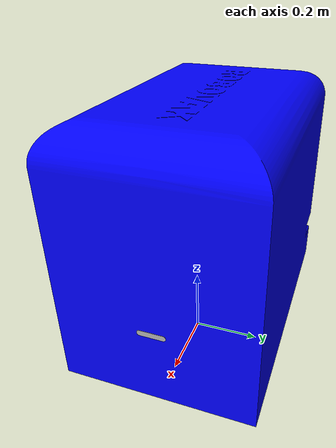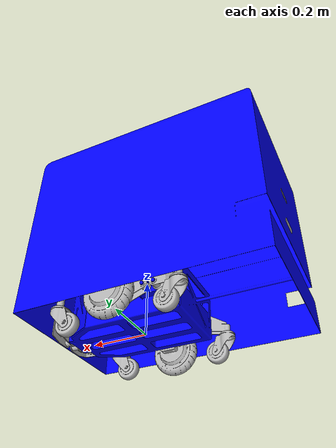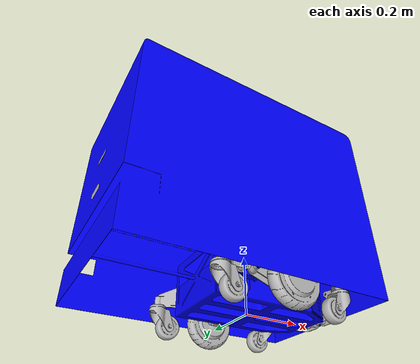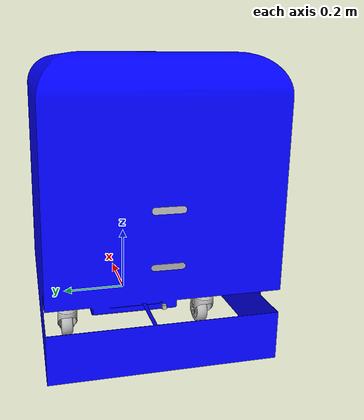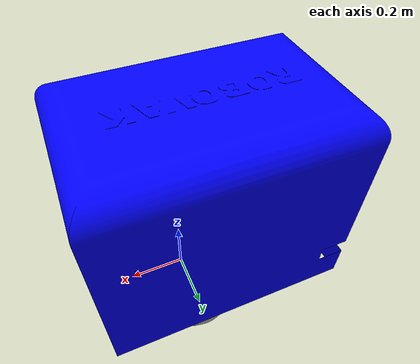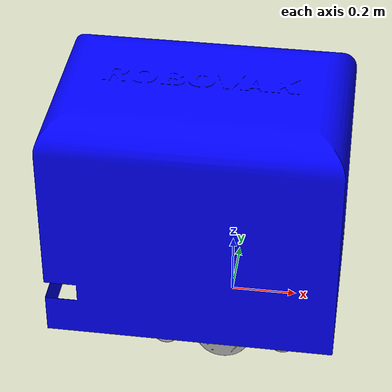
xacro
<?xml version="1.0" ?>
<robot name="robot_cleaner_fix" xmlns:xacro="http://www.ros.org/wiki/xacro">

<xacro:include filename="$(find robot_cleaner_fix_description)/urdf/materials.xacro" />
<xacro:include filename="$(find robot_cleaner_fix_description)/urdf/robot_cleaner_fix.trans" />
<xacro:include filename="$(find robot_cleaner_fix_description)/urdf/robot_cleaner_fix.gazebo" />

<link name="base_footprint" />

<joint name="base_footprint_joint" type="fixed">
  <parent link="base_footprint" />
  <child link="base_link" />
</joint>

<link name="base_link">
  <inertial>
    <origin xyz="-0.011180184961346859 1.857556735149512e-05 0.17795010903467734" rpy="0 0 0"/>
    <mass value="8.69547472352218"/>
    <inertia ixx="0.652363" iyy="0.874564" izz="0.579309" ixy="9.1e-05" iyz="-0.000223" ixz="0.096221"/>
  </inertial>
  <visual>
    <origin xyz="0 0 0" rpy="0 0 0"/>
    <geometry>
      <mesh filename="package://robot_cleaner_fix_description/meshes/base_link.stl" scale="0.001 0.001 0.001"/>
    </geometry>
    <material name="blue"/>
  </visual>
  <collision>
    <origin xyz="0 0 0" rpy="0 0 0"/>
    <geometry>
      <mesh filename="package://robot_cleaner_fix_description/meshes/base_link.stl" scale="0.001 0.001 0.001"/>
    </geometry>
  </collision>
</link>

<link name="left_wheel_1">
  <inertial>
    <origin xyz="-5.569637119094001e-07 -0.03991872409872016 -9.199933262774018e-08" rpy="0 0 0"/>
    <mass value="1.1900191614829423"/>
    <inertia ixx="0.002126" iyy="0.003545" izz="0.002126" ixy="0.0" iyz="0.0" ixz="-0.0"/>
  </inertial>
  <visual>
    <origin xyz="-0.000447 0.20125 -0.031" rpy="0 0 0"/>
    <geometry>
      <mesh filename="package://robot_cleaner_fix_description/meshes/left_wheel_1.stl" scale="0.001 0.001 0.001"/>
    </geometry>
    <material name="silver"/>
  </visual>
  <collision>
    <origin xyz="-0.000447 0.20125 -0.031" rpy="0 0 0"/>
    <geometry>
      <mesh filename="package://robot_cleaner_fix_description/meshes/left_wheel_1.stl" scale="0.001 0.001 0.001"/>
    </geometry>
  </collision>
</link>

<link name="right_wheel_1">
  <inertial>
    <origin xyz="-5.569637182833704e-07 0.039918724098714914 9.19993327769264e-08" rpy="0 0 0"/>
    <mass value="1.1900191614829407"/>
    <inertia ixx="0.002126" iyy="0.003545" izz="0.002126" ixy="-0.0" iyz="0.0" ixz="0.0"/>
  </inertial>
  <visual>
    <origin xyz="-0.000447 -0.20525 -0.031" rpy="0 0 0"/>
    <geometry>
      <mesh filename="package://robot_cleaner_fix_description/meshes/right_wheel_1.stl" scale="0.001 0.001 0.001"/>
    </geometry>
    <material name="silver"/>
  </visual>
  <collision>
    <origin xyz="-0.000447 -0.20525 -0.031" rpy="0 0 0"/>
    <geometry>
      <mesh filename="package://robot_cleaner_fix_description/meshes/right_wheel_1.stl" scale="0.001 0.001 0.001"/>
    </geometry>
  </collision>
</link>

<link name="left_wheel_arm_1">
  <inertial>
    <origin xyz="0.07673142205387917 0.0010630489693319312 -0.014076073167351738" rpy="0 0 0"/>
    <mass value="0.1270684130523778"/>
    <inertia ixx="7.4e-05" iyy="0.000206" izz="0.000155" ixy="-0.0" iyz="0.0" ixz="1.6e-05"/>
  </inertial>
  <visual>
    <origin xyz="0.089553 0.18525 -0.069" rpy="0 0 0"/>
    <geometry>
      <mesh filename="package://robot_cleaner_fix_description/meshes/left_wheel_arm_1.stl" scale="0.001 0.001 0.001"/>
    </geometry>
    <material name="silver"/>
  </visual>
  <collision>
    <origin xyz="0.089553 0.18525 -0.069" rpy="0 0 0"/>
    <geometry>
      <mesh filename="package://robot_cleaner_fix_description/meshes/left_wheel_arm_1.stl" scale="0.001 0.001 0.001"/>
    </geometry>
  </collision>
</link>

<link name="right_wheel_arm_1">
  <inertial>
    <origin xyz="0.07673142165828555 -0.0009094500375780301 -0.01407596822043071" rpy="0 0 0"/>
    <mass value="0.12706840580817644"/>
    <inertia ixx="7.4e-05" iyy="0.000206" izz="0.000156" ixy="-0.0" iyz="0.0" ixz="1.6e-05"/>
  </inertial>
  <visual>
    <origin xyz="0.089553 -0.18525 -0.069" rpy="0 0 0"/>
    <geometry>
      <mesh filename="package://robot_cleaner_fix_description/meshes/right_wheel_arm_1.stl" scale="0.001 0.001 0.001"/>
    </geometry>
    <material name="silver"/>
  </visual>
  <collision>
    <origin xyz="0.089553 -0.18525 -0.069" rpy="0 0 0"/>
    <geometry>
      <mesh filename="package://robot_cleaner_fix_description/meshes/right_wheel_arm_1.stl" scale="0.001 0.001 0.001"/>
    </geometry>
  </collision>
</link>

<link name="right_front_casterarm_1">
  <inertial>
    <origin xyz="-0.04101463724684637 0.006381100707153614 0.010896408525965129" rpy="0 0 0"/>
    <mass value="0.057739704393848006"/>
    <inertia ixx="3e-05" iyy="8.4e-05" izz="7.9e-05" ixy="1.7e-05" iyz="3e-06" ixz="-7e-06"/>
  </inertial>
  <visual>
    <origin xyz="0.129553 -0.18525 -0.069" rpy="0 0 0"/>
    <geometry>
      <mesh filename="package://robot_cleaner_fix_description/meshes/right_front_casterarm_1.stl" scale="0.001 0.001 0.001"/>
    </geometry>
    <material name="silver"/>
  </visual>
  <collision>
    <origin xyz="0.129553 -0.18525 -0.069" rpy="0 0 0"/>
    <geometry>
      <mesh filename="package://robot_cleaner_fix_description/meshes/right_front_casterarm_1.stl" scale="0.001 0.001 0.001"/>
    </geometry>
  </collision>
</link>

<link name="left_front_casterarm_1">
  <inertial>
    <origin xyz="-0.041014637049509056 -0.006381100481246321 0.010896408436181268" rpy="0 0 0"/>
    <mass value="0.05773970442715474"/>
    <inertia ixx="3e-05" iyy="8.4e-05" izz="7.9e-05" ixy="-1.7e-05" iyz="-3e-06" ixz="-7e-06"/>
  </inertial>
  <visual>
    <origin xyz="0.129553 0.18525 -0.069" rpy="0 0 0"/>
    <geometry>
      <mesh filename="package://robot_cleaner_fix_description/meshes/left_front_casterarm_1.stl" scale="0.001 0.001 0.001"/>
    </geometry>
    <material name="silver"/>
  </visual>
  <collision>
    <origin xyz="0.129553 0.18525 -0.069" rpy="0 0 0"/>
    <geometry>
      <mesh filename="package://robot_cleaner_fix_description/meshes/left_front_casterarm_1.stl" scale="0.001 0.001 0.001"/>
    </geometry>
  </collision>
</link>

<link name="left_front_casterwheel_1">
  <inertial>
    <origin xyz="5.352023419724627e-07 -3.8393818688198245e-07 -8.459150663449322e-08" rpy="0 0 0"/>
    <mass value="0.15265041550606903"/>
    <inertia ixx="7e-05" iyy="0.000115" izz="7e-05" ixy="-1e-06" iyz="-0.0" ixz="0.0"/>
  </inertial>
  <visual>
    <origin xyz="0.179558 0.208681 0.014" rpy="0 0 0"/>
    <geometry>
      <mesh filename="package://robot_cleaner_fix_description/meshes/left_front_casterwheel_1.stl" scale="0.001 0.001 0.001"/>
    </geometry>
    <material name="silver"/>
  </visual>
  <collision>
    <origin xyz="0.179558 0.208681 0.014" rpy="0 0 0"/>
    <geometry>
      <mesh filename="package://robot_cleaner_fix_description/meshes/left_front_casterwheel_1.stl" scale="0.001 0.001 0.001"/>
    </geometry>
  </collision>
</link>

<link name="left_rear_casterwheel_1">
  <inertial>
    <origin xyz="3.490402556149963e-07 3.8623196862985765e-08 -9.749668981526294e-08" rpy="0 0 0"/>
    <mass value="0.1526490802875982"/>
    <inertia ixx="7e-05" iyy="0.000115" izz="7e-05" ixy="-2e-06" iyz="0.0" ixz="0.0"/>
  </inertial>
  <visual>
    <origin xyz="-0.179741 0.203795 0.014" rpy="0 0 0"/>
    <geometry>
      <mesh filename="package://robot_cleaner_fix_description/meshes/left_rear_casterwheel_1.stl" scale="0.001 0.001 0.001"/>
    </geometry>
    <material name="silver"/>
  </visual>
  <collision>
    <origin xyz="-0.179741 0.203795 0.014" rpy="0 0 0"/>
    <geometry>
      <mesh filename="package://robot_cleaner_fix_description/meshes/left_rear_casterwheel_1.stl" scale="0.001 0.001 0.001"/>
    </geometry>
  </collision>
</link>

<link name="right_front_casterwheel_1">
  <inertial>
    <origin xyz="4.969060834192351e-07 6.528189916421567e-08 -5.6359183096474363e-08" rpy="0 0 0"/>
    <mass value="0.15265022527998973"/>
    <inertia ixx="7e-05" iyy="0.000115" izz="7e-05" ixy="0.0" iyz="-0.0" ixz="-0.0"/>
  </inertial>
  <visual>
    <origin xyz="0.179554 -0.209177 0.014" rpy="0 0 0"/>
    <geometry>
      <mesh filename="package://robot_cleaner_fix_description/meshes/right_front_casterwheel_1.stl" scale="0.001 0.001 0.001"/>
    </geometry>
    <material name="silver"/>
  </visual>
  <collision>
    <origin xyz="0.179554 -0.209177 0.014" rpy="0 0 0"/>
    <geometry>
      <mesh filename="package://robot_cleaner_fix_description/meshes/right_front_casterwheel_1.stl" scale="0.001 0.001 0.001"/>
    </geometry>
  </collision>
</link>

<link name="right_rear_casterwheel_1">
  <inertial>
    <origin xyz="-4.6445461893140916e-08 -3.883458572218057e-07 -9.96888406060159e-08" rpy="0 0 0"/>
    <mass value="0.15265062431983312"/>
    <inertia ixx="7e-05" iyy="0.000115" izz="7e-05" ixy="-1e-06" iyz="0.0" ixz="0.0"/>
  </inertial>
  <visual>
    <origin xyz="-0.179702 -0.197445 0.014" rpy="0 0 0"/>
    <geometry>
      <mesh filename="package://robot_cleaner_fix_description/meshes/right_rear_casterwheel_1.stl" scale="0.001 0.001 0.001"/>
    </geometry>
    <material name="silver"/>
  </visual>
  <collision>
    <origin xyz="-0.179702 -0.197445 0.014" rpy="0 0 0"/>
    <geometry>
      <mesh filename="package://robot_cleaner_fix_description/meshes/right_rear_casterwheel_1.stl" scale="0.001 0.001 0.001"/>
    </geometry>
  </collision>
</link>

<link name="right_rear_casterholder_1">
  <inertial>
    <origin xyz="-0.010793558705910228 -6.309798074083384e-05 -0.025862095557405564" rpy="0 0 0"/>
    <mass value="0.05532656181322749"/>
    <inertia ixx="4.8e-05" iyy="5.6e-05" izz="4e-05" ixy="0.0" iyz="-0.0" ixz="-1.9e-05"/>
  </inertial>
  <visual>
    <origin xyz="-0.219697 -0.1981 -0.054" rpy="0 0 0"/>
    <geometry>
      <mesh filename="package://robot_cleaner_fix_description/meshes/right_rear_casterholder_1.stl" scale="0.001 0.001 0.001"/>
    </geometry>
    <material name="silver"/>
  </visual>
  <collision>
    <origin xyz="-0.219697 -0.1981 -0.054" rpy="0 0 0"/>
    <geometry>
      <mesh filename="package://robot_cleaner_fix_description/meshes/right_rear_casterholder_1.stl" scale="0.001 0.001 0.001"/>
    </geometry>
  </collision>
</link>

<link name="left_rear_casterholder_1">
  <inertial>
    <origin xyz="-0.01078629940418005 -0.0003977582943001934 -0.02586209411444508" rpy="0 0 0"/>
    <mass value="0.055326426227370336"/>
    <inertia ixx="4.8e-05" iyy="5.6e-05" izz="4e-05" ixy="-0.0" iyz="-1e-06" ixz="-1.9e-05"/>
  </inertial>
  <visual>
    <origin xyz="-0.219697 0.2019 -0.054" rpy="0 0 0"/>
    <geometry>
      <mesh filename="package://robot_cleaner_fix_description/meshes/left_rear_casterholder_1.stl" scale="0.001 0.001 0.001"/>
    </geometry>
    <material name="silver"/>
  </visual>
  <collision>
    <origin xyz="-0.219697 0.2019 -0.054" rpy="0 0 0"/>
    <geometry>
      <mesh filename="package://robot_cleaner_fix_description/meshes/left_rear_casterholder_1.stl" scale="0.001 0.001 0.001"/>
    </geometry>
  </collision>
</link>

<link name="left_front_casterholder_1">
  <inertial>
    <origin xyz="0.010792735282725258 3.9684900523057065e-05 -0.025862090529065164" rpy="0 0 0"/>
    <mass value="0.05532657913569803"/>
    <inertia ixx="4.8e-05" iyy="5.6e-05" izz="4e-05" ixy="0.0" iyz="0.0" ixz="1.9e-05"/>
  </inertial>
  <visual>
    <origin xyz="0.219553 0.20925 -0.054" rpy="0 0 0"/>
    <geometry>
      <mesh filename="package://robot_cleaner_fix_description/meshes/left_front_casterholder_1.stl" scale="0.001 0.001 0.001"/>
    </geometry>
    <material name="silver"/>
  </visual>
  <collision>
    <origin xyz="0.219553 0.20925 -0.054" rpy="0 0 0"/>
    <geometry>
      <mesh filename="package://robot_cleaner_fix_description/meshes/left_front_casterholder_1.stl" scale="0.001 0.001 0.001"/>
    </geometry>
  </collision>
</link>

<link name="right_front_casterholder_1">
  <inertial>
    <origin xyz="0.010791995982969371 -0.00013321474327329663 -0.025862094344746595" rpy="0 0 0"/>
    <mass value="0.05532656394702597"/>
    <inertia ixx="4.8e-05" iyy="5.6e-05" izz="4e-05" ixy="0.0" iyz="-0.0" ixz="1.9e-05"/>
  </inertial>
  <visual>
    <origin xyz="0.219553 -0.20925 -0.054" rpy="0 0 0"/>
    <geometry>
      <mesh filename="package://robot_cleaner_fix_description/meshes/right_front_casterholder_1.stl" scale="0.001 0.001 0.001"/>
    </geometry>
    <material name="silver"/>
  </visual>
  <collision>
    <origin xyz="0.219553 -0.20925 -0.054" rpy="0 0 0"/>
    <geometry>
      <mesh filename="package://robot_cleaner_fix_description/meshes/right_front_casterholder_1.stl" scale="0.001 0.001 0.001"/>
    </geometry>
  </collision>
</link>

<link name="left_rear_casterarm_1">
  <inertial>
    <origin xyz="-0.022585991092101132 -0.09016073028050496 0.0360434093685393" rpy="0 0 0"/>
    <mass value="0.10465846573520063"/>
    <inertia ixx="0.0004" iyy="0.000164" izz="0.000432" ixy="-0.000148" iyz="8.7e-05" ixz="2.9e-05"/>
  </inertial>
  <visual>
    <origin xyz="-0.300697 0.0219 -0.024" rpy="0 0 0"/>
    <geometry>
      <mesh filename="package://robot_cleaner_fix_description/meshes/left_rear_casterarm_1.stl" scale="0.001 0.001 0.001"/>
    </geometry>
    <material name="silver"/>
  </visual>
  <collision>
    <origin xyz="-0.300697 0.0219 -0.024" rpy="0 0 0"/>
    <geometry>
      <mesh filename="package://robot_cleaner_fix_description/meshes/left_rear_casterarm_1.stl" scale="0.001 0.001 0.001"/>
    </geometry>
  </collision>
</link>

<link name="right_rear_casterarm_1">
  <inertial>
    <origin xyz="-0.022585991104744962 0.0901607302736004 0.036043409366065725" rpy="0 0 0"/>
    <mass value="0.10465846573816248"/>
    <inertia ixx="0.0004" iyy="0.000164" izz="0.000432" ixy="0.000148" iyz="-8.7e-05" ixz="2.9e-05"/>
  </inertial>
  <visual>
    <origin xyz="-0.300697 -0.0181 -0.024" rpy="0 0 0"/>
    <geometry>
      <mesh filename="package://robot_cleaner_fix_description/meshes/right_rear_casterarm_1.stl" scale="0.001 0.001 0.001"/>
    </geometry>
    <material name="silver"/>
  </visual>
  <collision>
    <origin xyz="-0.300697 -0.0181 -0.024" rpy="0 0 0"/>
    <geometry>
      <mesh filename="package://robot_cleaner_fix_description/meshes/right_rear_casterarm_1.stl" scale="0.001 0.001 0.001"/>
    </geometry>
  </collision>
</link>

<link name="camera_1">
  <inertial>
    <origin xyz="-0.00024656703471037655 8.101463944143461e-14 -4.341204437480206e-05" rpy="0 0 0"/>
    <mass value="0.000665990034610988"/>
    <inertia ixx="0.0" iyy="0.0" izz="0.0" ixy="-0.0" iyz="0.0" ixz="0.0"/>
  </inertial>
  <visual>
    <origin xyz="0.536118 -0.0 -0.29" rpy="0 0 0"/>
    <geometry>
      <mesh filename="package://robot_cleaner_fix_description/meshes/camera_1.stl" scale="0.001 0.001 0.001"/>
    </geometry>
    <material name="silver"/>
  </visual>
  <collision>
    <origin xyz="0.536118 -0.0 -0.29" rpy="0 0 0"/>
    <geometry>
      <mesh filename="package://robot_cleaner_fix_description/meshes/camera_1.stl" scale="0.001 0.001 0.001"/>
    </geometry>
  </collision>
</link>

<link name="lidar_1">
  <inertial>
    <origin xyz="-0.004999999999996452 2.8819660665305627e-10 -9.490989660854154e-10" rpy="0 0 0"/>
    <mass value="0.0010000000000000048"/>
    <inertia ixx="0.0" iyy="0.0" izz="0.0" ixy="0.0" iyz="0.0" ixz="0.0"/>
  </inertial>
  <visual>
    <origin xyz="0.5115 -0.0 -0.176" rpy="0 0 0"/>
    <geometry>
      <mesh filename="package://robot_cleaner_fix_description/meshes/lidar_1.stl" scale="0.001 0.001 0.001"/>
    </geometry>
    <material name="silver"/>
  </visual>
  <collision>
    <origin xyz="0.5115 -0.0 -0.176" rpy="0 0 0"/>
    <geometry>
      <mesh filename="package://robot_cleaner_fix_description/meshes/lidar_1.stl" scale="0.001 0.001 0.001"/>
    </geometry>
  </collision>
</link>

<link name="camera_2">
  <inertial>
    <origin xyz="-0.0002499999999916458 8.10140843299223e-14 4.268807529683727e-14" rpy="0 0 0"/>
    <mass value="0.000665990034610988"/>
    <inertia ixx="0.0" iyy="0.0" izz="0.0" ixy="0.0" iyz="0.0" ixz="-0.0"/>
  </inertial>
  <visual>
    <origin xyz="0.537 -0.0 -0.425" rpy="0 0 0"/>
    <geometry>
      <mesh filename="package://robot_cleaner_fix_description/meshes/camera_2.stl" scale="0.001 0.001 0.001"/>
    </geometry>
    <material name="silver"/>
  </visual>
  <collision>
    <origin xyz="0.537 -0.0 -0.425" rpy="0 0 0"/>
    <geometry>
      <mesh filename="package://robot_cleaner_fix_description/meshes/camera_2.stl" scale="0.001 0.001 0.001"/>
    </geometry>
  </collision>
</link>

<link name="camera_3">
  <inertial>
    <origin xyz="0.000250000000005246 8.10140843299223e-14 2.5146551507759796e-14" rpy="0 0 0"/>
    <mass value="0.000665990034610988"/>
    <inertia ixx="0.0" iyy="0.0" izz="0.0" ixy="0.0" iyz="0.0" ixz="-0.0"/>
  </inertial>
  <visual>
    <origin xyz="-0.337 -0.0 -0.25" rpy="0 0 0"/>
    <geometry>
      <mesh filename="package://robot_cleaner_fix_description/meshes/camera_3.stl" scale="0.001 0.001 0.001"/>
    </geometry>
    <material name="silver"/>
  </visual>
  <collision>
    <origin xyz="-0.337 -0.0 -0.25" rpy="0 0 0"/>
    <geometry>
      <mesh filename="package://robot_cleaner_fix_description/meshes/camera_3.stl" scale="0.001 0.001 0.001"/>
    </geometry>
  </collision>
</link>

<joint name="left_wheel" type="continuous">
  <origin xyz="0.09 -0.016 -0.038" rpy="0 0 0"/>
  <parent link="left_wheel_arm_1"/>
  <child link="left_wheel_1"/>
  <axis xyz="-0.0 1.0 0.0"/>
</joint>

<joint name="right_wheel" type="continuous">
  <origin xyz="0.09 0.02 -0.038" rpy="0 0 0"/>
  <parent link="right_wheel_arm_1"/>
  <child link="right_wheel_1"/>
  <axis xyz="0.0 1.0 -0.0"/>
</joint>

<joint name="left_wheel_arm" type="fixed">
  <origin xyz="-0.089553 -0.18525 0.069" rpy="0 0 0"/>
  <parent link="base_link"/>
  <child link="left_wheel_arm_1"/>
</joint>

<joint name="right_wheel_arm" type="fixed">
  <origin xyz="-0.089553 0.18525 0.069" rpy="0 0 0"/>
  <parent link="base_link"/>
  <child link="right_wheel_arm_1"/>
</joint>

<joint name="right_front_caster_arm" type="fixed">
  <origin xyz="-0.129553 0.18525 0.069" rpy="0 0 0"/>
  <parent link="base_link"/>
  <child link="right_front_casterarm_1"/>
</joint>

<joint name="left_front_caster_arm" type="fixed">
  <origin xyz="-0.129553 -0.18525 0.069" rpy="0 0 0"/>
  <parent link="base_link"/>
  <child link="left_front_casterarm_1"/>
</joint>

<joint name="left_front_caster_wheel" type="continuous">
  <origin xyz="0.039995 0.000569 -0.068" rpy="0 0 0"/>
  <parent link="left_front_casterholder_1"/>
  <child link="left_front_casterwheel_1"/>
  <axis xyz="0.014215 -0.999899 0.0"/>
</joint>

<joint name="left_rear_caster_wheel" type="continuous">
  <origin xyz="-0.039956 -0.001895 -0.068" rpy="0 0 0"/>
  <parent link="left_rear_casterholder_1"/>
  <child link="left_rear_casterwheel_1"/>
  <axis xyz="-0.047373 0.998877 -0.0"/>
</joint>

<joint name="right_front_caster_wheel" type="continuous">
  <origin xyz="0.039999 -7.3e-05 -0.068" rpy="0 0 0"/>
  <parent link="right_front_casterholder_1"/>
  <child link="right_front_casterwheel_1"/>
  <axis xyz="-0.001824 -0.999998 0.0"/>
</joint>

<joint name="right_rear_caster_wheel" type="continuous">
  <origin xyz="-0.039995 -0.000655 -0.068" rpy="0 0 0"/>
  <parent link="right_rear_casterholder_1"/>
  <child link="right_rear_casterwheel_1"/>
  <axis xyz="-0.016384 0.999866 -0.0"/>
</joint>

<joint name="right_rear_caster_holder" type="continuous">
  <origin xyz="-0.081 0.18 0.03" rpy="0 0 0"/>
  <parent link="right_rear_casterarm_1"/>
  <child link="right_rear_casterholder_1"/>
  <axis xyz="0.0 0.0 1.0"/>
</joint>

<joint name="left_rear_caster_holder" type="continuous">
  <origin xyz="-0.081 -0.18 0.03" rpy="0 0 0"/>
  <parent link="left_rear_casterarm_1"/>
  <child link="left_rear_casterholder_1"/>
  <axis xyz="0.0 0.0 1.0"/>
</joint>

<joint name="left_front_caster_holder" type="continuous">
  <origin xyz="-0.09 -0.024 -0.015" rpy="0 0 0"/>
  <parent link="left_front_casterarm_1"/>
  <child link="left_front_casterholder_1"/>
  <axis xyz="0.0 0.0 1.0"/>
</joint>

<joint name="right_front_caster_holder" type="continuous">
  <origin xyz="-0.09 0.024 -0.015" rpy="0 0 0"/>
  <parent link="right_front_casterarm_1"/>
  <child link="right_front_casterholder_1"/>
  <axis xyz="0.0 0.0 1.0"/>
</joint>

<joint name="left_rear_caster_arm" type="fixed">
  <origin xyz="0.300697 -0.0219 0.024" rpy="0 0 0"/>
  <parent link="base_link"/>
  <child link="left_rear_casterarm_1"/>
</joint>

<joint name="right_rear_caster_arm" type="fixed">
  <origin xyz="0.300697 0.0181 0.024" rpy="0 0 0"/>
  <parent link="base_link"/>
  <child link="right_rear_casterarm_1"/>
</joint>

<joint name="cam_front_bottom" type="fixed">
  <origin xyz="-0.536118 0.0 0.29" rpy="0 0 0"/>
  <parent link="base_link"/>
  <child link="camera_1"/>
</joint>

<joint name="lidar" type="fixed">
  <origin xyz="-0.5115 0.0 0.176" rpy="0 0 3.14"/>
  <parent link="base_link"/>
  <child link="lidar_1"/>
</joint>

<joint name="cam_front_top" type="fixed">
  <origin xyz="-0.537 0.0 0.425" rpy="0 0 0"/>
  <parent link="base_link"/>
  <child link="camera_2"/>
</joint>

<joint name="cam_rear" type="fixed">
  <origin xyz="0.337 0.0 0.25" rpy="0 0 0"/>
  <parent link="base_link"/>
  <child link="camera_3"/>
</joint>

</robot>

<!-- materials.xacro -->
<robot name="robot_cleaner_fix" xmlns:xacro="http://www.ros.org/wiki/xacro" >

<material name="silver">
  <color rgba="0.700 0.700 0.700 1.000"/>
</material>

<material name="blue">
  <color rgba="0.000 0.000 1.00 1.000"/>
</material>

</robot>

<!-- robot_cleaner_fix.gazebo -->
<robot name="robot_cleaner_fix" xmlns:xacro="http://www.ros.org/wiki/xacro" >

<xacro:property name="body_color" value="Gazebo/Silver" />

<gazebo>
  <plugin name="control" filename="libgazebo_ros_control.so"/>
</gazebo>
<gazebo reference="base_link">
  <material>${body_color}</material>
  <mu1>0.2</mu1>
  <mu2>0.2</mu2>
  <selfCollide>true</selfCollide>
  <gravity>true</gravity>
</gazebo>

<gazebo reference="left_wheel_1">
  <material>${body_color}</material>
  <mu1>0.2</mu1>
  <mu2>0.2</mu2>
  <selfCollide>true</selfCollide>
</gazebo>

<gazebo reference="right_wheel_1">
  <material>${body_color}</material>
  <mu1>0.2</mu1>
  <mu2>0.2</mu2>
  <selfCollide>true</selfCollide>
</gazebo>

<gazebo reference="left_wheel_arm_1">
  <material>${body_color}</material>
  <mu1>0.2</mu1>
  <mu2>0.2</mu2>
  <selfCollide>true</selfCollide>
</gazebo>

<gazebo reference="right_wheel_arm_1">
  <material>${body_color}</material>
  <mu1>0.2</mu1>
  <mu2>0.2</mu2>
  <selfCollide>true</selfCollide>
</gazebo>

<gazebo reference="right_front_casterarm_1">
  <material>${body_color}</material>
  <mu1>0.2</mu1>
  <mu2>0.2</mu2>
  <selfCollide>true</selfCollide>
</gazebo>

<gazebo reference="left_front_casterarm_1">
  <material>${body_color}</material>
  <mu1>0.2</mu1>
  <mu2>0.2</mu2>
  <selfCollide>true</selfCollide>
</gazebo>

<gazebo reference="left_front_casterwheel_1">
  <material>${body_color}</material>
  <mu1>0.2</mu1>
  <mu2>0.2</mu2>
  <selfCollide>true</selfCollide>
</gazebo>

<gazebo reference="left_rear_casterwheel_1">
  <material>${body_color}</material>
  <mu1>0.2</mu1>
  <mu2>0.2</mu2>
  <selfCollide>true</selfCollide>
</gazebo>

<gazebo reference="right_front_casterwheel_1">
  <material>${body_color}</material>
  <mu1>0.2</mu1>
  <mu2>0.2</mu2>
  <selfCollide>true</selfCollide>
</gazebo>

<gazebo reference="right_rear_casterwheel_1">
  <material>${body_color}</material>
  <mu1>0.2</mu1>
  <mu2>0.2</mu2>
  <selfCollide>true</selfCollide>
</gazebo>

<gazebo reference="right_rear_casterholder_1">
  <material>${body_color}</material>
  <mu1>0.2</mu1>
  <mu2>0.2</mu2>
  <selfCollide>true</selfCollide>
</gazebo>

<gazebo reference="left_rear_casterholder_1">
  <material>${body_color}</material>
  <mu1>0.2</mu1>
  <mu2>0.2</mu2>
  <selfCollide>true</selfCollide>
</gazebo>

<gazebo reference="left_front_casterholder_1">
  <material>${body_color}</material>
  <mu1>0.2</mu1>
  <mu2>0.2</mu2>
  <selfCollide>true</selfCollide>
</gazebo>

<gazebo reference="right_front_casterholder_1">
  <material>${body_color}</material>
  <mu1>0.2</mu1>
  <mu2>0.2</mu2>
  <selfCollide>true</selfCollide>
</gazebo>

<gazebo reference="left_rear_casterarm_1">
  <material>${body_color}</material>
  <mu1>0.2</mu1>
  <mu2>0.2</mu2>
  <selfCollide>true</selfCollide>
</gazebo>

<gazebo reference="right_rear_casterarm_1">
  <material>${body_color}</material>
  <mu1>0.2</mu1>
  <mu2>0.2</mu2>
  <selfCollide>true</selfCollide>
</gazebo>

<gazebo reference="camera_1">
        <sensor type="depth" name="camera_1">
            <always_on>true</always_on>
            <update_rate>20.0</update_rate>
            <camera>
                <horizontal_fov>1.65806</horizontal_fov>
                <image>
                    <width>1280</width>
                    <height>720</height>
                    <format>R8G8B8</format>
                </image>
                <clip>
                    <near>0.05</near>
                    <far>8</far>
                </clip>
            </camera>
            <plugin name="kinect_camera_controller" filename="libgazebo_ros_openni_kinect.so">
                <cameraName>camera_1</cameraName>
                <alwaysOn>true</alwaysOn>
                <updateRate>10</updateRate>
                <imageTopicName>rgb/image_raw</imageTopicName>
                <depthImageTopicName>depth/image_raw</depthImageTopicName>
                <pointCloudTopicName>depth/points</pointCloudTopicName>
                <cameraInfoTopicName>rgb/camera_info</cameraInfoTopicName>
                <depthImageCameraInfoTopicName>depth/camera_info</depthImageCameraInfoTopicName>
                <frameName>d435i</frameName>
                <baseline>0.1</baseline>
                <distortion_k1>0.0</distortion_k1>
                <distortion_k2>0.0</distortion_k2>
                <distortion_k3>0.0</distortion_k3>
                <distortion_t1>0.0</distortion_t1>
                <distortion_t2>0.0</distortion_t2>
                <pointCloudCutoff>0.1</pointCloudCutoff>
            </plugin>
        </sensor>
    </gazebo>

<gazebo reference="lidar_1">
        <sensor type="ray" name="front_sensor">
            <pose>0 0 0 0 0 0</pose>
            <visualize>true</visualize>
            <update_rate>50</update_rate>
            <ray>
                <scan>
                    <horizontal>
                        
                        <samples>720</samples>
                        <resolution>1</resolution>
                        <min_angle>-2.35</min_angle>
                        <max_angle>2.35</max_angle>
                    </horizontal>
                </scan>
                <range>
                    <min>0.10</min>
                    <max>40.0</max>
                    <resolution>0.02</resolution>
                </range>
                <noise>
                    <type>gaussian</type>
                    <mean>0.0</mean>
                    <stddev>0.001</stddev>
                </noise>
            </ray>
 
            <plugin name="gazebo_ros_head_hokuyo_controller" filename="libgazebo_ros_laser.so">
                <topicName>/sick_safetyscanners_front/scan</topicName>
                <frameName>front_sicknanoscan</frameName>
            </plugin>
        </sensor>
</gazebo>

 <gazebo reference="camera_2">
        <sensor type="depth" name="camera_2">
            <always_on>true</always_on>
            <update_rate>20.0</update_rate>
            <camera>
                <horizontal_fov>1.65806</horizontal_fov>
                <image>
                    <width>1280</width>
                    <height>720</height>
                    <format>R8G8B8</format>
                </image>
                <clip>
                    <near>0.05</near>
                    <far>8</far>
                </clip>
            </camera>
            <plugin name="kinect_camera_controller" filename="libgazebo_ros_openni_kinect.so">
                <cameraName>camera_2</cameraName>
                <alwaysOn>true</alwaysOn>
                <updateRate>10</updateRate>
                <imageTopicName>rgb/image_raw2</imageTopicName>
                <depthImageTopicName>depth/image_raw2</depthImageTopicName>
                <pointCloudTopicName>depth/points2</pointCloudTopicName>
                <cameraInfoTopicName>rgb/camera_info2</cameraInfoTopicName>
                <depthImageCameraInfoTopicName>depth/camera_info2</depthImageCameraInfoTopicName>
                <frameName>d435i</frameName>
                <baseline>0.1</baseline>
                <distortion_k1>0.0</distortion_k1>
                <distortion_k2>0.0</distortion_k2>
                <distortion_k3>0.0</distortion_k3>
                <distortion_t1>0.0</distortion_t1>
                <distortion_t2>0.0</distortion_t2>
                <pointCloudCutoff>0.1</pointCloudCutoff>
            </plugin>
        </sensor>
 </gazebo>

 <gazebo reference="camera_3">
        <sensor type="depth" name="camera_3">
            <always_on>true</always_on>
            <update_rate>20.0</update_rate>
            <camera>
                <horizontal_fov>1.65806</horizontal_fov>
                <image>
                    <width>1280</width>
                    <height>720</height>
                    <format>R8G8B8</format>
                </image>
                <clip>
                    <near>0.05</near>
                    <far>8</far>
                </clip>
            </camera>
            <plugin name="kinect_camera_controller" filename="libgazebo_ros_openni_kinect.so">
                <cameraName>camera_3</cameraName>
                <alwaysOn>true</alwaysOn>
                <updateRate>10</updateRate>
                <imageTopicName>rgb/image_raw3</imageTopicName>
                <depthImageTopicName>depth/image_raw3</depthImageTopicName>
                <pointCloudTopicName>depth/points3</pointCloudTopicName>
                <cameraInfoTopicName>rgb/camera_info3</cameraInfoTopicName>
                <depthImageCameraInfoTopicName>depth/camera_info3</depthImageCameraInfoTopicName>
                <frameName>d435i</frameName>
                <baseline>0.1</baseline>
                <distortion_k1>0.0</distortion_k1>
                <distortion_k2>0.0</distortion_k2>
                <distortion_k3>0.0</distortion_k3>
                <distortion_t1>0.0</distortion_t1>
                <distortion_t2>0.0</distortion_t2>
                <pointCloudCutoff>0.1</pointCloudCutoff>
            </plugin>
        </sensor>
</gazebo>

</robot>
